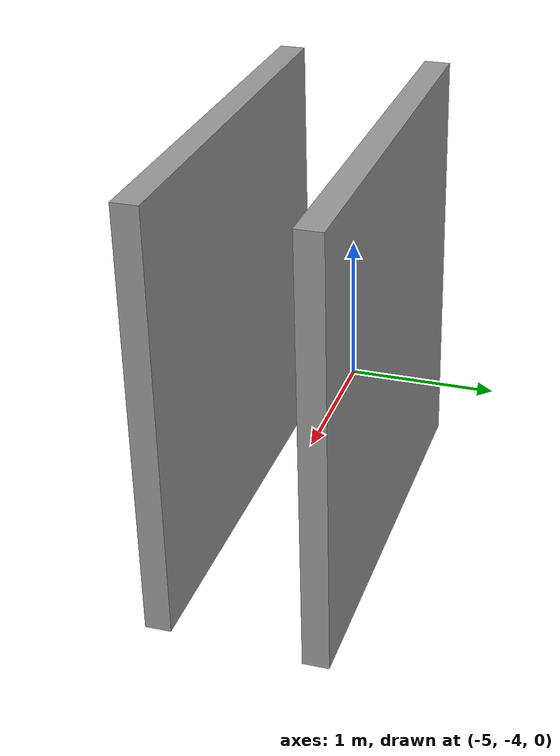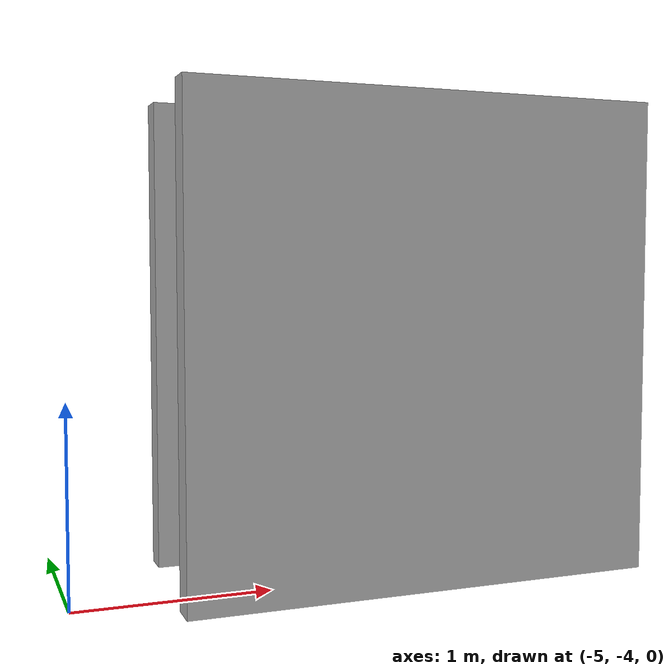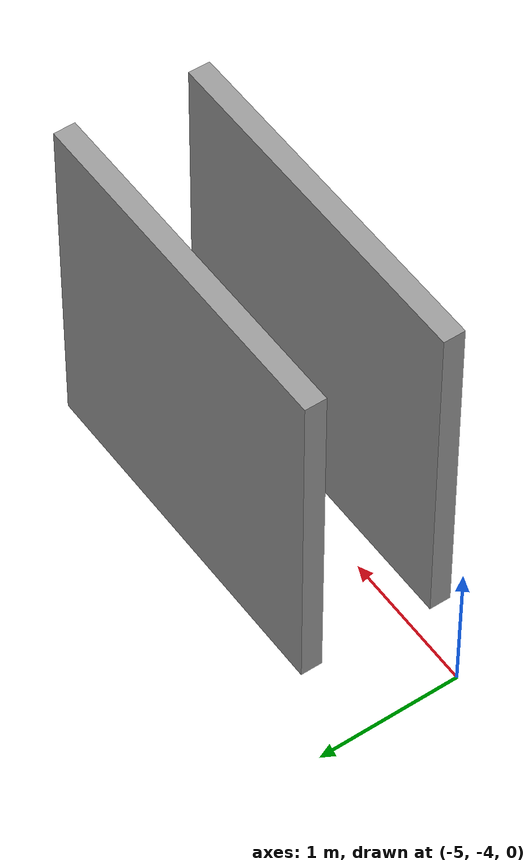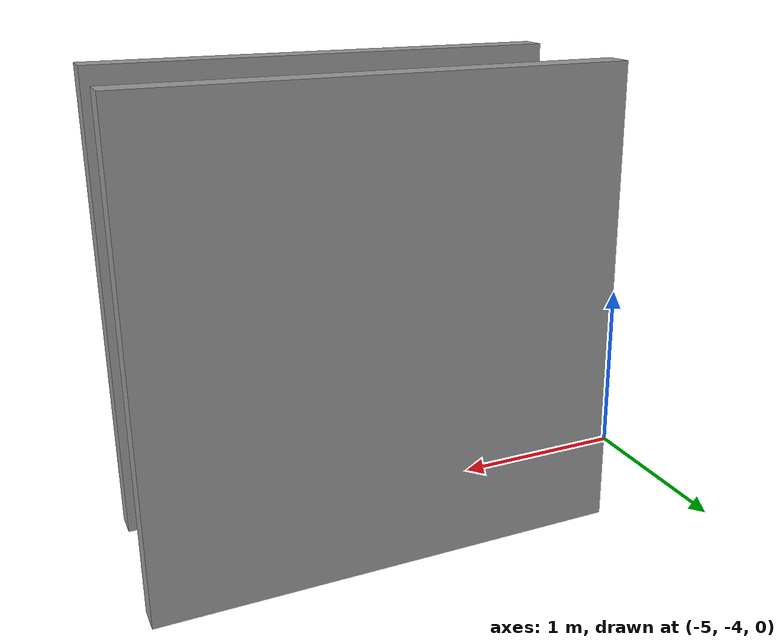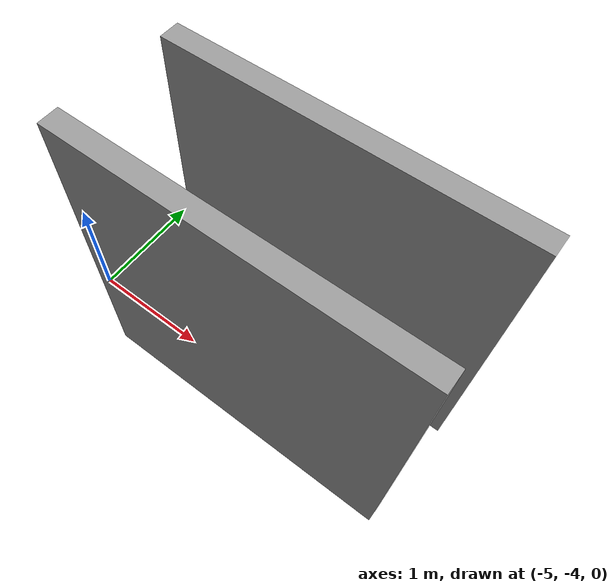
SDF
<?xml version='1.0'?>
<sdf version='1.7'>
  <model name='rail'>
    <pose>-2.2525 -2.1575 0 0 -0 0</pose>
    <link name='Wall_0'>
      <collision name='Wall_0_Collision'>
        <geometry>
          <box>
            <size>2.5 0.15 2.5</size>
          </box>
        </geometry>
        <pose>0 0 1.25 0 -0 0</pose>
      </collision>
      <visual name='Wall_0_Visual'>
        <pose>0 0 1.25 0 -0 0</pose>
        <geometry>
          <box>
            <size>2.5 0.15 2.5</size>
          </box>
        </geometry>
        <material>
          <script>
            <uri>file://media/materials/scripts/gazebo.material</uri>
            <name>Gazebo/Grey</name>
          </script>
          <ambient>1 1 1 1</ambient>
        </material>
        <meta>
          <layer>0</layer>
        </meta>
      </visual>
      <pose>-0.9525 -1.1725 0 0 -0 0</pose>
    </link>
    <link name='Wall_2'>
      <collision name='Wall_2_Collision'>
        <geometry>
          <box>
            <size>2.5 0.15 2.5</size>
          </box>
        </geometry>
        <pose>0 0 1.25 0 -0 0</pose>
      </collision>
      <visual name='Wall_2_Visual'>
        <pose>0 0 1.25 0 -0 0</pose>
        <geometry>
          <box>
            <size>2.5 0.15 2.5</size>
          </box>
        </geometry>
        <material>
          <script>
            <uri>file://media/materials/scripts/gazebo.material</uri>
            <name>Gazebo/Grey</name>
          </script>
          <ambient>1 1 1 1</ambient>
        </material>
        <meta>
          <layer>0</layer>
        </meta>
      </visual>
      <pose>-1.0025 -2.0825 0 0 -0 0</pose>
    </link>
    <static>1</static>
  </model>
</sdf>
